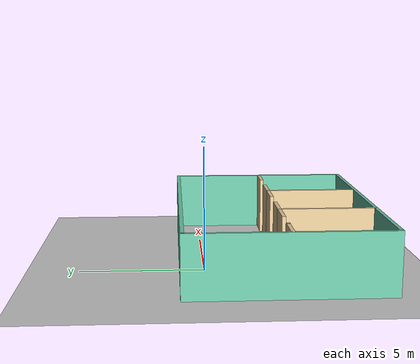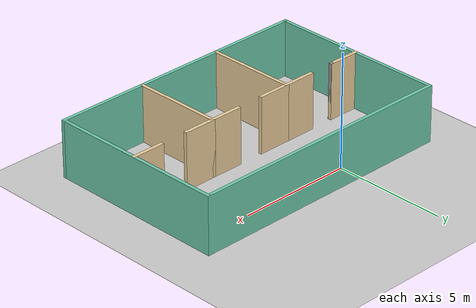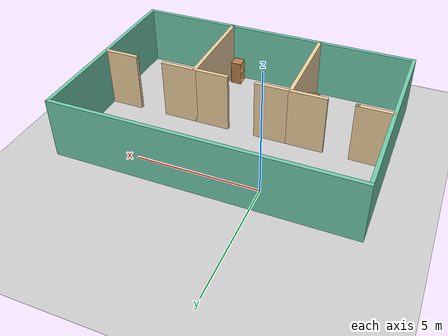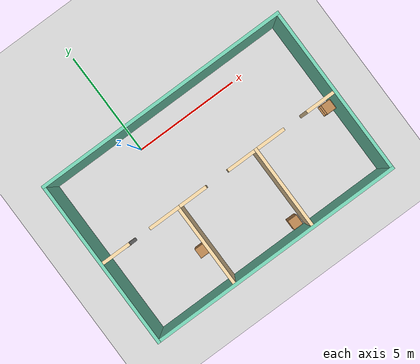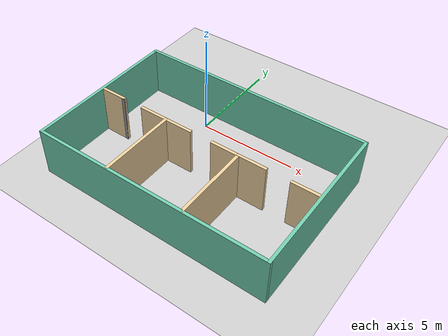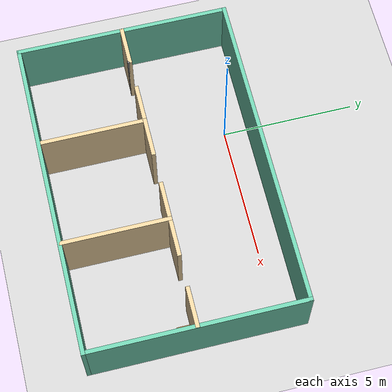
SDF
<sdf version="1.6">
 <world name="robot-office">
  <light name="sun" type="directional">
   <pose>0 0 10 0 -0 0</pose>
   <diffuse>0.8 0.8 0.8 1</diffuse>
   <specular>0.2 0.2 0.2 1</specular>
   <attenuation>
    <range>1000</range>
    <constant>0.9</constant>
    <linear>0.01</linear>
    <quadratic>0.001</quadratic>
   </attenuation>
   <direction>-0.5 0.1 -0.9</direction>
  </light>
  <model name="ground_plane">
   <static>1</static>
   <link name="link">
    <collision name="collision">
     <geometry><plane><normal>0 0 1</normal><size>100 100</size></plane></geometry>
     <surface><friction><ode><mu>100</mu><mu2>50</mu2></ode></friction></surface>
    </collision>
    <visual name="visual">
     <cast_shadows>0</cast_shadows>
     <geometry><plane><normal>0 0 1</normal><size>100 100</size></plane></geometry>
     <material>
      <script><uri>file://media/materials/scripts/gazebo.material</uri><name>Gazebo/Grey</name></script>
     </material>
    </visual>
   </link>
  </model>
  <gravity>0 0 -9.8</gravity>
  <magnetic_field>6e-06 2.3e-05 -4.2e-05</magnetic_field>
  <atmosphere type="adiabatic"/>
  <physics name="default_physics" default="0" type="ode">
   <max_step_size>0.001</max_step_size>
   <real_time_factor>1</real_time_factor>
   <real_time_update_rate>1000</real_time_update_rate>
  </physics>
  <scene><ambient>0.4 0.4 0.4 1</ambient><background>0.7 0.7 0.7 1</background><shadows>1</shadows></scene>
  <spherical_coordinates>
   <surface_model>EARTH_WGS84</surface_model>
   <latitude_deg>0</latitude_deg>
   <longitude_deg>0</longitude_deg>
   <elevation>0</elevation>
   <heading_deg>0</heading_deg>
  </spherical_coordinates>
  <model name="RobotOffice">
   <pose>1.99675 -2.98962 0 0 -0 0</pose>
   <link name="Wall_17">
    <collision name="Wall_17_Collision">
     <geometry><box><size>12.0004 0.15 2.5</size></box></geometry>
     <pose>0 0 1.25 0 -0 0</pose>
    </collision>
    <visual name="Wall_17_Visual">
     <pose>0 0 1.25 0 -0 0</pose>
     <geometry><box><size>12.0004 0.15 2.5</size></box></geometry>
     <material>
      <script><uri>file://media/materials/scripts/gazebo.material</uri><name>Gazebo/Grey</name></script>
      <ambient>0.435294 0.796078 0.67451 1</ambient>
     </material>
     <meta><layer>0</layer></meta>
    </visual>
    <pose>-2e-06 3.925 0 0 0 -3.14159</pose>
   </link>
   <link name="Wall_19">
    <collision name="Wall_19_Collision">
     <geometry><box><size>8 0.15 2.5</size></box></geometry>
     <pose>0 0 1.25 0 -0 0</pose>
    </collision>
    <visual name="Wall_19_Visual">
     <pose>0 0 1.25 0 -0 0</pose>
     <geometry><box><size>8 0.15 2.5</size></box></geometry>
     <material>
      <script><uri>file://media/materials/scripts/gazebo.material</uri><name>Gazebo/Grey</name></script>
      <ambient>0.435294 0.796078 0.67451 1</ambient>
     </material>
     <meta><layer>0</layer></meta>
    </visual>
    <pose>-5.92522 -3.8e-05 0 0 0 -1.5708</pose>
   </link>
   <link name="Wall_20">
    <collision name="Wall_20_Collision">
     <geometry><box><size>12 0.15 2.5</size></box></geometry>
     <pose>0 0 1.25 0 -0 0</pose>
    </collision>
    <visual name="Wall_20_Visual">
     <pose>0 0 1.25 0 -0 0</pose>
     <geometry><box><size>12 0.15 2.5</size></box></geometry>
     <material>
      <script><uri>file://media/materials/scripts/gazebo.material</uri><name>Gazebo/Grey</name></script>
      <ambient>0.435294 0.796078 0.67451 1</ambient>
     </material>
     <meta><layer>0</layer></meta>
    </visual>
    <pose>-0.000217 -3.92504 0 0 -0 0</pose>
   </link>
   <link name="Wall_21">
    <collision name="Wall_21_Collision">
     <geometry><box><size>8 0.15 2.5</size></box></geometry>
     <pose>0 0 1.25 0 -0 0</pose>
    </collision>
    <visual name="Wall_21_Visual">
     <pose>0 0 1.25 0 -0 0</pose>
     <geometry><box><size>8 0.15 2.5</size></box></geometry>
     <material>
      <script><uri>file://media/materials/scripts/gazebo.material</uri><name>Gazebo/Grey</name></script>
      <ambient>0.435294 0.796078 0.67451 1</ambient>
     </material>
     <meta><layer>0</layer></meta>
    </visual>
    <pose>5.925 0 0 0 -0 1.57074</pose>
   </link>
   <link name="Wall_27">
    <collision name="Wall_27_Collision">
     <geometry><box><size>1.5 0.15 2.5</size></box></geometry>
     <pose>0 0 1.25 0 -0 0</pose>
    </collision>
    <visual name="Wall_27_Visual">
     <pose>0 0 1.25 0 -0 0</pose>
     <geometry><box><size>1.5 0.15 2.5</size></box></geometry>
     <material>
      <script><uri>file://media/materials/scripts/gazebo.material</uri><name>Gazebo/Grey</name></script>
      <ambient>0.921569 0.807843 0.615686 1</ambient>
     </material>
     <meta><layer>0</layer></meta>
    </visual>
    <pose>-5.24522 -0.018038 0 0 -0 0</pose>
   </link>
   <link name="Wall_29">
    <collision name="Wall_29_Collision">
     <geometry><box><size>1.51521 0.15 2.5</size></box></geometry>
     <pose>0 0 1.25 0 -0 0</pose>
    </collision>
    <visual name="Wall_29_Visual">
     <pose>0 0 1.25 0 -0 0</pose>
     <geometry><box><size>1.51521 0.15 2.5</size></box></geometry>
     <material>
      <script><uri>file://media/materials/scripts/gazebo.material</uri><name>Gazebo/Grey</name></script>
      <ambient>0.921569 0.807843 0.615686 1</ambient>
     </material>
     <meta><layer>0</layer></meta>
    </visual>
    <pose>-2.71606 -0.018038 0 0 -0 0</pose>
   </link>
   <link name="Wall_31">
    <collision name="Wall_31_Collision">
     <geometry><box><size>0.15 0.15 2.5</size></box></geometry>
     <pose>0 0 1.25 0 -0 0</pose>
    </collision>
    <visual name="Wall_31_Visual">
     <pose>0 0 1.25 0 -0 0</pose>
     <geometry><box><size>0.15 0.15 2.5</size></box></geometry>
     <material>
      <script><uri>file://media/materials/scripts/gazebo.material</uri><name>Gazebo/Grey</name></script>
      <ambient>1 1 1 1</ambient>
     </material>
     <meta><layer>0</layer></meta>
    </visual>
    <pose>-4.57022 -0.029538 0 0 -0 0</pose>
   </link>
   <link name="Wall_34">
    <collision name="Wall_34_Collision">
     <geometry><box><size>4 0.15 2.5</size></box></geometry>
     <pose>0 0 1.25 0 -0 0</pose>
    </collision>
    <visual name="Wall_34_Visual">
     <pose>0 0 1.25 0 -0 0</pose>
     <geometry><box><size>4 0.15 2.5</size></box></geometry>
     <material>
      <script><uri>file://media/materials/scripts/gazebo.material</uri><name>Gazebo/Grey</name></script>
      <ambient>0.921569 0.807843 0.615686 1</ambient>
     </material>
     <meta><layer>0</layer></meta>
    </visual>
    <pose>-2.03322 -1.94304 0 0 0 -1.5708</pose>
   </link>
   <link name="Wall_36">
    <collision name="Wall_36_Collision">
     <geometry><box><size>1.5 0.15 2.5</size></box></geometry>
     <pose>0 0 1.25 0 -0 0</pose>
    </collision>
    <visual name="Wall_36_Visual">
     <pose>0 0 1.25 0 -0 0</pose>
     <geometry><box><size>1.5 0.15 2.5</size></box></geometry>
     <material>
      <script><uri>file://media/materials/scripts/gazebo.material</uri><name>Gazebo/Grey</name></script>
      <ambient>0.921569 0.807843 0.615686 1</ambient>
     </material>
     <meta><layer>0</layer></meta>
    </visual>
    <pose>-1.35845 -0.018038 0 0 -0 0</pose>
   </link>
   <link name="Wall_43">
    <collision name="Wall_43_Collision">
     <geometry><box><size>1.5 0.15 2.5</size></box></geometry>
     <pose>0 0 1.25 0 -0 0</pose>
    </collision>
    <visual name="Wall_43_Visual">
     <pose>0 0 1.25 0 -0 0</pose>
     <geometry><box><size>1.5 0.15 2.5</size></box></geometry>
     <material>
      <script><uri>file://media/materials/scripts/gazebo.material</uri><name>Gazebo/Grey</name></script>
      <ambient>0.921569 0.807843 0.615686 1</ambient>
     </material>
     <meta><layer>0</layer></meta>
    </visual>
    <pose>5.23878 -0.018038 0 0 -0 0</pose>
   </link>
   <link name="Wall_45">
    <collision name="Wall_45_Collision">
     <geometry><box><size>4 0.15 2.5</size></box></geometry>
     <pose>0 0 1.25 0 -0 0</pose>
    </collision>
    <visual name="Wall_45_Visual">
     <pose>0 0 1.25 0 -0 0</pose>
     <geometry><box><size>4 0.15 2.5</size></box></geometry>
     <material>
      <script><uri>file://media/materials/scripts/gazebo.material</uri><name>Gazebo/Grey</name></script>
      <ambient>0.921569 0.807843 0.615686 1</ambient>
     </material>
     <meta><layer>0</layer></meta>
    </visual>
    <pose>1.92178 -1.94304 0 0 0 -1.5708</pose>
   </link>
   <link name="Wall_47">
    <collision name="Wall_47_Collision">
     <geometry><box><size>1.5 0.15 2.5</size></box></geometry>
     <pose>0 0 1.25 0 -0 0</pose>
    </collision>
    <visual name="Wall_47_Visual">
     <pose>0 0 1.25 0 -0 0</pose>
     <geometry><box><size>1.5 0.15 2.5</size></box></geometry>
     <material>
      <script><uri>file://media/materials/scripts/gazebo.material</uri><name>Gazebo/Grey</name></script>
      <ambient>0.921569 0.807843 0.615686 1</ambient>
     </material>
     <meta><layer>0</layer></meta>
    </visual>
    <pose>1.24678 -0.018038 0 0 -0 0</pose>
   </link>
   <link name="Wall_51">
    <collision name="Wall_51_Collision">
     <geometry><box><size>1.5 0.15 2.5</size></box></geometry>
     <pose>0 0 1.25 0 -0 0</pose>
    </collision>
    <visual name="Wall_51_Visual">
     <pose>0 0 1.25 0 -0 0</pose>
     <geometry><box><size>1.5 0.15 2.5</size></box></geometry>
     <material>
      <script><uri>file://media/materials/scripts/gazebo.material</uri><name>Gazebo/Grey</name></script>
      <ambient>0.921569 0.807843 0.615686 1</ambient>
     </material>
     <meta><layer>0</layer></meta>
    </visual>
    <pose>2.59678 -0.018038 0 0 -0 0</pose>
   </link>
   <static>1</static>
  </model>
  <model name="cabinet_0_clone">
   <static>1</static>
   <link name="cabinet_bottom_plate">
    <inertial>
     <pose>0 0 -1 0 -0 0</pose>
     <inertia><ixx>2.05</ixx><ixy>0</ixy><ixz>0</ixz><iyy>2.05</iyy><iyz>0</iyz><izz>2.05</izz></inertia>
     <mass>25</mass>
    </inertial>
    <collision name="cabinet_bottom_plate_geom">
     <pose>0 0 0.01 0 -0 0</pose>
     <geometry><box><size>0.45 0.45 0.02</size></box></geometry>
    </collision>
    <visual name="cabinet_bottom_plate_geom_visual">
     <pose>0 0 0.01 0 -0 0</pose>
     <geometry><box><size>0.45 0.45 0.02</size></box></geometry>
     <material>
      <script><uri>file://media/materials/scripts/gazebo.material</uri><name>Gazebo/Wood</name></script>
     </material>
    </visual>
    <collision name="cabinet_bottom_plate_geom_cabinet_back_plate">
     <pose>0.235 0 0.51 0 -0 0</pose>
     <geometry><box><size>0.02 0.45 1.02</size></box></geometry>
    </collision>
    <visual name="cabinet_bottom_plate_geom_cabinet_back_plate_visual">
     <pose>0.235 0 0.51 0 -0 0</pose>
     <geometry><box><size>0.02 0.45 1.02</size></box></geometry>
     <material>
      <script><uri>file://media/materials/scripts/gazebo.material</uri><name>Gazebo/Wood</name></script>
     </material>
    </visual>
    <collision name="cabinet_bottom_plate_geom_cabinet_left_plate">
     <pose>0 0.235 0.51 0 -0 0</pose>
     <geometry><box><size>0.45 0.02 1.02</size></box></geometry>
    </collision>
    <visual name="cabinet_bottom_plate_geom_cabinet_left_plate_visual">
     <pose>0 0.235 0.51 0 -0 0</pose>
     <geometry><box><size>0.45 0.02 1.02</size></box></geometry>
     <material>
      <script><uri>file://media/materials/scripts/gazebo.material</uri><name>Gazebo/Wood</name></script>
     </material>
    </visual>
    <collision name="cabinet_bottom_plate_geom_cabinet_middle_plate">
     <pose>0 0 0.51 0 -0 0</pose>
     <geometry><box><size>0.45 0.45 0.02</size></box></geometry>
    </collision>
    <visual name="cabinet_bottom_plate_geom_cabinet_middle_plate_visual">
     <pose>0 0 0.51 0 -0 0</pose>
     <geometry><box><size>0.45 0.45 0.02</size></box></geometry>
     <material>
      <script><uri>file://media/materials/scripts/gazebo.material</uri><name>Gazebo/Wood</name></script>
     </material>
    </visual>
    <collision name="cabinet_bottom_plate_geom_cabinet_right_plate">
     <pose>0 -0.235 0.51 0 -0 0</pose>
     <geometry><box><size>0.45 0.02 1.02</size></box></geometry>
    </collision>
    <visual name="cabinet_bottom_plate_geom_cabinet_right_plate_visual">
     <pose>0 -0.235 0.51 0 -0 0</pose>
     <geometry><box><size>0.45 0.02 1.02</size></box></geometry>
     <material>
      <script><uri>file://media/materials/scripts/gazebo.material</uri><name>Gazebo/Wood</name></script>
     </material>
    </visual>
    <collision name="cabinet_bottom_plate_geom_cabinet_top_plate">
     <pose>0 0 1.01 0 -0 0</pose>
     <geometry><box><size>0.45 0.45 0.02</size></box></geometry>
    </collision>
    <visual name="cabinet_bottom_plate_geom_cabinet_top_plate_visual">
     <pose>0 0 1.01 0 -0 0</pose>
     <geometry><box><size>0.45 0.45 0.02</size></box></geometry>
     <material>
      <script><uri>file://media/materials/scripts/gazebo.material</uri><name>Gazebo/Wood</name></script>
     </material>
    </visual>
   </link>
   <pose>3.50776 -6.49286 0 0 -0 0</pose>
  </model>
  <model name="cabinet_0_clone_clone_clone">
   <static>1</static>
   <link name="cabinet_bottom_plate">
    <inertial>
     <pose>0 0 -1 0 -0 0</pose>
     <inertia><ixx>2.05</ixx><ixy>0</ixy><ixz>0</ixz><iyy>2.05</iyy><iyz>0</iyz><izz>2.05</izz></inertia>
     <mass>25</mass>
    </inertial>
    <collision name="cabinet_bottom_plate_geom">
     <pose>0 0 0.01 0 -0 0</pose>
     <geometry><box><size>0.45 0.45 0.02</size></box></geometry>
    </collision>
    <visual name="cabinet_bottom_plate_geom_visual">
     <pose>0 0 0.01 0 -0 0</pose>
     <geometry><box><size>0.45 0.45 0.02</size></box></geometry>
     <material>
      <script><uri>file://media/materials/scripts/gazebo.material</uri><name>Gazebo/Wood</name></script>
     </material>
    </visual>
    <collision name="cabinet_bottom_plate_geom_cabinet_back_plate">
     <pose>0.235 0 0.51 0 -0 0</pose>
     <geometry><box><size>0.02 0.45 1.02</size></box></geometry>
    </collision>
    <visual name="cabinet_bottom_plate_geom_cabinet_back_plate_visual">
     <pose>0.235 0 0.51 0 -0 0</pose>
     <geometry><box><size>0.02 0.45 1.02</size></box></geometry>
     <material>
      <script><uri>file://media/materials/scripts/gazebo.material</uri><name>Gazebo/Wood</name></script>
     </material>
    </visual>
    <collision name="cabinet_bottom_plate_geom_cabinet_left_plate">
     <pose>0 0.235 0.51 0 -0 0</pose>
     <geometry><box><size>0.45 0.02 1.02</size></box></geometry>
    </collision>
    <visual name="cabinet_bottom_plate_geom_cabinet_left_plate_visual">
     <pose>0 0.235 0.51 0 -0 0</pose>
     <geometry><box><size>0.45 0.02 1.02</size></box></geometry>
     <material>
      <script><uri>file://media/materials/scripts/gazebo.material</uri><name>Gazebo/Wood</name></script>
     </material>
    </visual>
    <collision name="cabinet_bottom_plate_geom_cabinet_middle_plate">
     <pose>0 0 0.51 0 -0 0</pose>
     <geometry><box><size>0.45 0.45 0.02</size></box></geometry>
    </collision>
    <visual name="cabinet_bottom_plate_geom_cabinet_middle_plate_visual">
     <pose>0 0 0.51 0 -0 0</pose>
     <geometry><box><size>0.45 0.45 0.02</size></box></geometry>
     <material>
      <script><uri>file://media/materials/scripts/gazebo.material</uri><name>Gazebo/Wood</name></script>
     </material>
    </visual>
    <collision name="cabinet_bottom_plate_geom_cabinet_right_plate">
     <pose>0 -0.235 0.51 0 -0 0</pose>
     <geometry><box><size>0.45 0.02 1.02</size></box></geometry>
    </collision>
    <visual name="cabinet_bottom_plate_geom_cabinet_right_plate_visual">
     <pose>0 -0.235 0.51 0 -0 0</pose>
     <geometry><box><size>0.45 0.02 1.02</size></box></geometry>
     <material>
      <script><uri>file://media/materials/scripts/gazebo.material</uri><name>Gazebo/Wood</name></script>
     </material>
    </visual>
    <collision name="cabinet_bottom_plate_geom_cabinet_top_plate">
     <pose>0 0 1.01 0 -0 0</pose>
     <geometry><box><size>0.45 0.45 0.02</size></box></geometry>
    </collision>
    <visual name="cabinet_bottom_plate_geom_cabinet_top_plate_visual">
     <pose>0 0 1.01 0 -0 0</pose>
     <geometry><box><size>0.45 0.45 0.02</size></box></geometry>
     <material>
      <script><uri>file://media/materials/scripts/gazebo.material</uri><name>Gazebo/Wood</name></script>
     </material>
    </visual>
   </link>
   <pose>7.58169 -3.37788 0 0 -0 0</pose>
  </model>
  <model name="cabinet_0_clone_clone_0_clone">
   <static>1</static>
   <link name="cabinet_bottom_plate">
    <inertial>
     <pose>0 0 -1 0 -0 0</pose>
     <inertia><ixx>2.05</ixx><ixy>0</ixy><ixz>0</ixz><iyy>2.05</iyy><iyz>0</iyz><izz>2.05</izz></inertia>
     <mass>25</mass>
    </inertial>
    <collision name="cabinet_bottom_plate_geom">
     <pose>0 0 0.01 0 -0 0</pose>
     <geometry><box><size>0.45 0.45 0.02</size></box></geometry>
    </collision>
    <visual name="cabinet_bottom_plate_geom_visual">
     <pose>0 0 0.01 0 -0 0</pose>
     <geometry><box><size>0.45 0.45 0.02</size></box></geometry>
     <material>
      <script><uri>file://media/materials/scripts/gazebo.material</uri><name>Gazebo/Wood</name></script>
     </material>
    </visual>
    <collision name="cabinet_bottom_plate_geom_cabinet_back_plate">
     <pose>0.235 0 0.51 0 -0 0</pose>
     <geometry><box><size>0.02 0.45 1.02</size></box></geometry>
    </collision>
    <visual name="cabinet_bottom_plate_geom_cabinet_back_plate_visual">
     <pose>0.235 0 0.51 0 -0 0</pose>
     <geometry><box><size>0.02 0.45 1.02</size></box></geometry>
     <material>
      <script><uri>file://media/materials/scripts/gazebo.material</uri><name>Gazebo/Wood</name></script>
     </material>
    </visual>
    <collision name="cabinet_bottom_plate_geom_cabinet_left_plate">
     <pose>0 0.235 0.51 0 -0 0</pose>
     <geometry><box><size>0.45 0.02 1.02</size></box></geometry>
    </collision>
    <visual name="cabinet_bottom_plate_geom_cabinet_left_plate_visual">
     <pose>0 0.235 0.51 0 -0 0</pose>
     <geometry><box><size>0.45 0.02 1.02</size></box></geometry>
     <material>
      <script><uri>file://media/materials/scripts/gazebo.material</uri><name>Gazebo/Wood</name></script>
     </material>
    </visual>
    <collision name="cabinet_bottom_plate_geom_cabinet_middle_plate">
     <pose>0 0 0.51 0 -0 0</pose>
     <geometry><box><size>0.45 0.45 0.02</size></box></geometry>
    </collision>
    <visual name="cabinet_bottom_plate_geom_cabinet_middle_plate_visual">
     <pose>0 0 0.51 0 -0 0</pose>
     <geometry><box><size>0.45 0.45 0.02</size></box></geometry>
     <material>
      <script><uri>file://media/materials/scripts/gazebo.material</uri><name>Gazebo/Wood</name></script>
     </material>
    </visual>
    <collision name="cabinet_bottom_plate_geom_cabinet_right_plate">
     <pose>0 -0.235 0.51 0 -0 0</pose>
     <geometry><box><size>0.45 0.02 1.02</size></box></geometry>
    </collision>
    <visual name="cabinet_bottom_plate_geom_cabinet_right_plate_visual">
     <pose>0 -0.235 0.51 0 -0 0</pose>
     <geometry><box><size>0.45 0.02 1.02</size></box></geometry>
     <material>
      <script><uri>file://media/materials/scripts/gazebo.material</uri><name>Gazebo/Wood</name></script>
     </material>
    </visual>
    <collision name="cabinet_bottom_plate_geom_cabinet_top_plate">
     <pose>0 0 1.01 0 -0 0</pose>
     <geometry><box><size>0.45 0.45 0.02</size></box></geometry>
    </collision>
    <visual name="cabinet_bottom_plate_geom_cabinet_top_plate_visual">
     <pose>0 0 1.01 0 -0 0</pose>
     <geometry><box><size>0.45 0.45 0.02</size></box></geometry>
     <material>
      <script><uri>file://media/materials/scripts/gazebo.material</uri><name>Gazebo/Wood</name></script>
     </material>
    </visual>
   </link>
   <pose>-0.407531 -5.09905 0 0 -0 0</pose>
  </model>
 </world>
</sdf>
